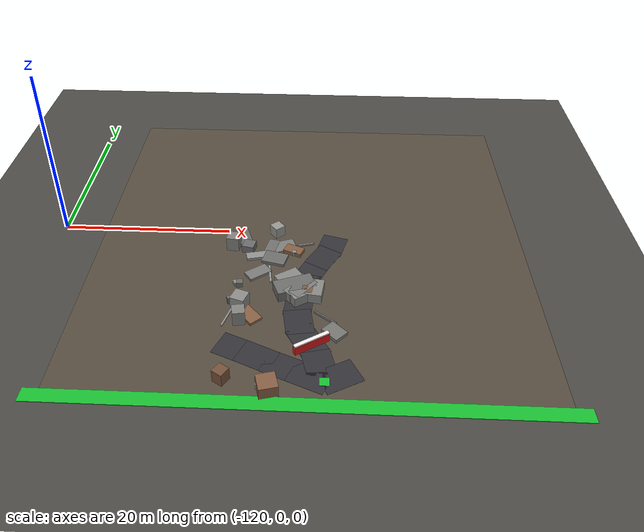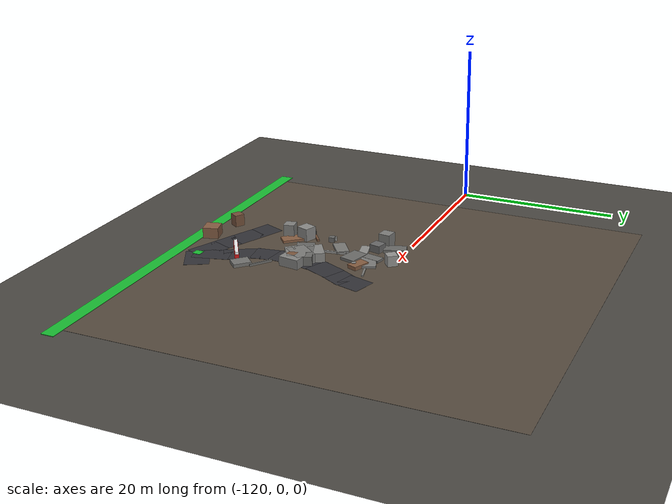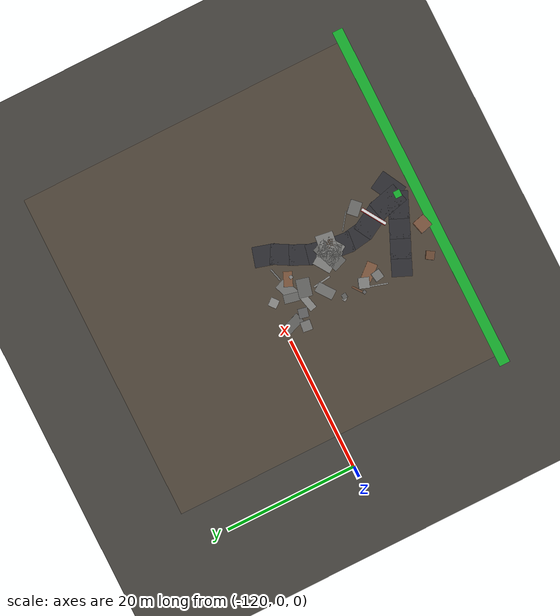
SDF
<sdf version="1.6">
 <world name="navitas_arena">
  <model name="ground_plane">
   <static>true</static>
   <link name="link">
    <collision name="collision">
     <geometry><plane><normal>0 0 1</normal><size>400 400</size></plane></geometry>
     <surface><friction><ode><mu>0.800</mu><mu2>0.800</mu2></ode></friction></surface>
    </collision>
    <visual name="visual">
     <cast_shadows>false</cast_shadows>
     <geometry><plane><normal>0 0 1</normal><size>400 400</size></plane></geometry>
     <material><ambient>0.300 0.290 0.270 1</ambient><diffuse>0.300 0.290 0.270 1</diffuse></material>
    </visual>
   </link>
  </model>
  <model name="gd_kolay">
   <static>true</static>
   <pose>-90.000 0.000 0.010 0 0 0.000</pose>
   <link name="link">
    <collision name="col"><geometry><box><size>50.000 50.000 0.020</size></box></geometry></collision>
    <visual name="vis">
     <geometry><box><size>50.000 50.000 0.020</size></box></geometry>
     <material><ambient>0.34 0.30 0.25 1</ambient><diffuse>0.34 0.30 0.25 1</diffuse></material>
    </visual>
   </link>
  </model>
  <model name="brd_kolay_S">
   <static>true</static>
   <pose>-90.000 -25.800 0.040 0 0 0.000</pose>
   <link name="link">
    <collision name="col"><geometry><box><size>53.200 1.600 0.080</size></box></geometry></collision>
    <visual name="vis">
     <geometry><box><size>53.200 1.600 0.080</size></box></geometry>
     <material><ambient>0.10 0.75 0.20 1</ambient><diffuse>0.10 0.75 0.20 1</diffuse></material>
    </visual>
   </link>
  </model>
  <model name="road_kolay_1_0">
   <static>true</static>
   <pose>-89.499 -22.399 0.040 0 0 2.741</pose>
   <link name="link">
    <collision name="col"><geometry><box><size>3.985 3.000 0.020</size></box></geometry></collision>
    <visual name="vis">
     <geometry><box><size>3.985 3.000 0.020</size></box></geometry>
     <material><ambient>0.20 0.20 0.22 1</ambient><diffuse>0.20 0.20 0.22 1</diffuse></material>
    </visual>
   </link>
  </model>
  <model name="road_kolay_1_1">
   <static>true</static>
   <pose>-92.226 -21.236 0.040 0 0 2.736</pose>
   <link name="link">
    <collision name="col"><geometry><box><size>3.744 3.000 0.020</size></box></geometry></collision>
    <visual name="vis">
     <geometry><box><size>3.744 3.000 0.020</size></box></geometry>
     <material><ambient>0.20 0.20 0.22 1</ambient><diffuse>0.20 0.20 0.22 1</diffuse></material>
    </visual>
   </link>
  </model>
  <model name="road_kolay_1_2">
   <static>true</static>
   <pose>-94.838 -20.087 0.040 0 0 2.719</pose>
   <link name="link">
    <collision name="col"><geometry><box><size>3.762 3.000 0.020</size></box></geometry></collision>
    <visual name="vis">
     <geometry><box><size>3.762 3.000 0.020</size></box></geometry>
     <material><ambient>0.20 0.20 0.22 1</ambient><diffuse>0.20 0.20 0.22 1</diffuse></material>
    </visual>
   </link>
  </model>
  <model name="road_kolay_1_3">
   <static>true</static>
   <pose>-97.314 -19.002 0.040 0 0 2.739</pose>
   <link name="link">
    <collision name="col"><geometry><box><size>3.445 3.000 0.020</size></box></geometry></collision>
    <visual name="vis">
     <geometry><box><size>3.445 3.000 0.020</size></box></geometry>
     <material><ambient>0.20 0.20 0.22 1</ambient><diffuse>0.20 0.20 0.22 1</diffuse></material>
    </visual>
   </link>
  </model>
  <model name="road_kolay_2_0">
   <static>true</static>
   <pose>-88.511 -21.250 0.040 0 0 1.813</pose>
   <link name="link">
    <collision name="col"><geometry><box><size>4.505 3.000 0.020</size></box></geometry></collision>
    <visual name="vis">
     <geometry><box><size>4.505 3.000 0.020</size></box></geometry>
     <material><ambient>0.20 0.20 0.22 1</ambient><diffuse>0.20 0.20 0.22 1</diffuse></material>
    </visual>
   </link>
  </model>
  <model name="road_kolay_2_1">
   <static>true</static>
   <pose>-89.820 -17.912 0.040 0 0 2.075</pose>
   <link name="link">
    <collision name="col"><geometry><box><size>4.528 3.000 0.020</size></box></geometry></collision>
    <visual name="vis">
     <geometry><box><size>4.528 3.000 0.020</size></box></geometry>
     <material><ambient>0.20 0.20 0.22 1</ambient><diffuse>0.20 0.20 0.22 1</diffuse></material>
    </visual>
   </link>
  </model>
  <model name="road_kolay_2_2">
   <static>true</static>
   <pose>-90.896 -15.042 0.040 0 0 1.725</pose>
   <link name="link">
    <collision name="col"><geometry><box><size>3.495 3.000 0.020</size></box></geometry></collision>
    <visual name="vis">
     <geometry><box><size>3.495 3.000 0.020</size></box></geometry>
     <material><ambient>0.20 0.20 0.22 1</ambient><diffuse>0.20 0.20 0.22 1</diffuse></material>
    </visual>
   </link>
  </model>
  <model name="road_kolay_2_3">
   <static>true</static>
   <pose>-90.962 -12.340 0.040 0 0 1.477</pose>
   <link name="link">
    <collision name="col"><geometry><box><size>3.753 3.000 0.020</size></box></geometry></collision>
    <visual name="vis">
     <geometry><box><size>3.753 3.000 0.020</size></box></geometry>
     <material><ambient>0.20 0.20 0.22 1</ambient><diffuse>0.20 0.20 0.22 1</diffuse></material>
    </visual>
   </link>
  </model>
  <model name="road_kolay_2_4">
   <static>true</static>
   <pose>-90.505 -9.460 0.040 0 0 1.353</pose>
   <link name="link">
    <collision name="col"><geometry><box><size>3.891 3.000 0.020</size></box></geometry></collision>
    <visual name="vis">
     <geometry><box><size>3.891 3.000 0.020</size></box></geometry>
     <material><ambient>0.20 0.20 0.22 1</ambient><diffuse>0.20 0.20 0.22 1</diffuse></material>
    </visual>
   </link>
  </model>
  <model name="road_kolay_2_5">
   <static>true</static>
   <pose>-89.645 -6.833 0.040 0 0 1.139</pose>
   <link name="link">
    <collision name="col"><geometry><box><size>3.469 3.000 0.020</size></box></geometry></collision>
    <visual name="vis">
     <geometry><box><size>3.469 3.000 0.020</size></box></geometry>
     <material><ambient>0.20 0.20 0.22 1</ambient><diffuse>0.20 0.20 0.22 1</diffuse></material>
    </visual>
   </link>
  </model>
  <model name="road_kolay_2_6">
   <static>true</static>
   <pose>-88.447 -4.500 0.040 0 0 1.056</pose>
   <link name="link">
    <collision name="col"><geometry><box><size>3.581 3.000 0.020</size></box></geometry></collision>
    <visual name="vis">
     <geometry><box><size>3.581 3.000 0.020</size></box></geometry>
     <material><ambient>0.20 0.20 0.22 1</ambient><diffuse>0.20 0.20 0.22 1</diffuse></material>
    </visual>
   </link>
  </model>
  <model name="road_kolay_2_7">
   <static>true</static>
   <pose>-87.449 -2.167 0.040 0 0 1.288</pose>
   <link name="link">
    <collision name="col"><geometry><box><size>3.330 3.000 0.020</size></box></geometry></collision>
    <visual name="vis">
     <geometry><box><size>3.330 3.000 0.020</size></box></geometry>
     <material><ambient>0.20 0.20 0.22 1</ambient><diffuse>0.20 0.20 0.22 1</diffuse></material>
    </visual>
   </link>
  </model>
  <model name="road_kolay_3_0">
   <static>true</static>
   <pose>-86.699 -22.266 0.040 0 0 0.489</pose>
   <link name="link">
    <collision name="col"><geometry><box><size>4.026 3.000 0.020</size></box></geometry></collision>
    <visual name="vis">
     <geometry><box><size>4.026 3.000 0.020</size></box></geometry>
     <material><ambient>0.20 0.20 0.22 1</ambient><diffuse>0.20 0.20 0.22 1</diffuse></material>
    </visual>
   </link>
  </model>
  <model name="bar_kolay_2">
   <static>true</static>
   <pose>-89.450 -18.504 0.500 0 0 3.702</pose>
   <link name="link">
    <collision name="col"><geometry><box><size>4.000 0.500 1.000</size></box></geometry></collision>
    <visual name="vis">
     <geometry><box><size>4.000 0.500 1.000</size></box></geometry>
     <material><ambient>0.85 0.10 0.10 1</ambient><diffuse>0.85 0.10 0.10 1</diffuse></material>
    </visual>
   </link>
  </model>
  <model name="bar_kolay_2b">
   <static>true</static>
   <pose>-89.450 -18.504 1.000 0 0 3.702</pose>
   <link name="link">
    <collision name="col"><geometry><box><size>4.000 0.400 0.300</size></box></geometry></collision>
    <visual name="vis">
     <geometry><box><size>4.000 0.400 0.300</size></box></geometry>
     <material><ambient>0.95 0.95 0.95 1</ambient><diffuse>0.95 0.95 0.95 1</diffuse></material>
    </visual>
   </link>
  </model>
  <model name="blk_kolay_2_0_0">
   <static>true</static>
   <pose>-89.874 -10.815 0.600 0 0 1.437</pose>
   <link name="link">
    <collision name="col"><geometry><box><size>2.585 2.942 1.200</size></box></geometry></collision>
    <visual name="vis">
     <geometry><box><size>2.585 2.942 1.200</size></box></geometry>
     <material><ambient>0.53 0.53 0.52 1</ambient><diffuse>0.53 0.53 0.52 1</diffuse></material>
    </visual>
   </link>
  </model>
  <model name="blk_kolay_2_0_1">
   <static>true</static>
   <pose>-90.118 -11.268 0.600 0 0 1.460</pose>
   <link name="link">
    <collision name="col"><geometry><box><size>1.112 1.112 1.200</size></box></geometry></collision>
    <visual name="vis">
     <geometry><box><size>1.112 1.112 1.200</size></box></geometry>
     <material><ambient>0.50 0.35 0.25 1</ambient><diffuse>0.50 0.35 0.25 1</diffuse></material>
    </visual>
   </link>
  </model>
  <model name="blk_kolay_2_0_2">
   <static>true</static>
   <pose>-91.536 -10.404 0.600 0 0 0.365</pose>
   <link name="link">
    <collision name="col"><geometry><box><size>4.382 2.172 1.200</size></box></geometry></collision>
    <visual name="vis">
     <geometry><box><size>4.382 2.172 1.200</size></box></geometry>
     <material><ambient>0.43 0.43 0.42 1</ambient><diffuse>0.43 0.43 0.42 1</diffuse></material>
    </visual>
   </link>
  </model>
  <model name="blk_kolay_2_0_3">
   <static>true</static>
   <pose>-90.945 -10.634 0.600 0 0 0.891</pose>
   <link name="link">
    <collision name="col"><geometry><box><size>3.248 2.330 1.200</size></box></geometry></collision>
    <visual name="vis">
     <geometry><box><size>3.248 2.330 1.200</size></box></geometry>
     <material><ambient>0.49 0.49 0.48 1</ambient><diffuse>0.49 0.49 0.48 1</diffuse></material>
    </visual>
   </link>
  </model>
  <model name="blk_kolay_2_0_4">
   <static>true</static>
   <pose>-91.459 -10.346 0.600 0 0 2.153</pose>
   <link name="link">
    <collision name="col"><geometry><box><size>4.481 2.786 1.200</size></box></geometry></collision>
    <visual name="vis">
     <geometry><box><size>4.481 2.786 1.200</size></box></geometry>
     <material><ambient>0.54 0.54 0.53 1</ambient><diffuse>0.54 0.54 0.53 1</diffuse></material>
    </visual>
   </link>
  </model>
  <model name="blk_kolay_2_0_5">
   <static>true</static>
   <pose>-91.927 -11.555 0.600 0 0 0.775</pose>
   <link name="link">
    <collision name="col"><geometry><box><size>1.119 1.119 1.200</size></box></geometry></collision>
    <visual name="vis">
     <geometry><box><size>1.119 1.119 1.200</size></box></geometry>
     <material><ambient>0.50 0.50 0.49 1</ambient><diffuse>0.50 0.50 0.49 1</diffuse></material>
    </visual>
   </link>
  </model>
  <model name="deb_kolay_1">
   <static>true</static>
   <pose>-93.348 -2.895 0.153 0 0 0.361</pose>
   <link name="link">
    <collision name="col"><geometry><box><size>3.176 1.853 0.307</size></box></geometry></collision>
    <visual name="vis">
     <geometry><box><size>3.176 1.853 0.307</size></box></geometry>
     <material><ambient>0.49 0.49 0.48 1</ambient><diffuse>0.49 0.49 0.48 1</diffuse></material>
    </visual>
   </link>
  </model>
  <model name="deb_kolay_3">
   <static>true</static>
   <pose>-91.915 -3.603 0.237 0 0 2.745</pose>
   <link name="link">
    <collision name="col"><geometry><box><size>2.190 1.310 0.474</size></box></geometry></collision>
    <visual name="vis">
     <geometry><box><size>2.190 1.310 0.474</size></box></geometry>
     <material><ambient>0.53 0.37 0.26 1</ambient><diffuse>0.53 0.37 0.26 1</diffuse></material>
    </visual>
   </link>
  </model>
  <model name="deb_kolay_16">
   <static>true</static>
   <pose>-95.796 -7.622 0.164 0 0 0.628</pose>
   <link name="link">
    <collision name="col"><geometry><box><size>2.740 1.505 0.328</size></box></geometry></collision>
    <visual name="vis">
     <geometry><box><size>2.740 1.505 0.328</size></box></geometry>
     <material><ambient>0.48 0.48 0.47 1</ambient><diffuse>0.48 0.48 0.47 1</diffuse></material>
    </visual>
   </link>
  </model>
  <model name="deb_kolay_19">
   <static>true</static>
   <pose>-94.417 -7.764 0.141 0 0 1.694</pose>
   <link name="link">
    <collision name="col"><geometry><box><size>2.726 0.218 0.281</size></box></geometry></collision>
    <visual name="vis">
     <geometry><box><size>2.726 0.218 0.281</size></box></geometry>
     <material><ambient>0.60 0.60 0.59 1</ambient><diffuse>0.60 0.60 0.59 1</diffuse></material>
    </visual>
   </link>
  </model>
  <model name="deb_kolay_21">
   <static>true</static>
   <pose>-96.152 -14.401 0.162 0 0 2.290</pose>
   <link name="link">
    <collision name="col"><geometry><box><size>2.666 1.549 0.325</size></box></geometry></collision>
    <visual name="vis">
     <geometry><box><size>2.666 1.549 0.325</size></box></geometry>
     <material><ambient>0.54 0.38 0.27 1</ambient><diffuse>0.54 0.38 0.27 1</diffuse></material>
    </visual>
   </link>
  </model>
  <model name="deb_kolay_39">
   <static>true</static>
   <pose>-97.242 -12.993 0.822 0 0 1.226</pose>
   <link name="link">
    <collision name="col"><geometry><box><size>1.578 1.578 1.644</size></box></geometry></collision>
    <visual name="vis">
     <geometry><box><size>1.578 1.578 1.644</size></box></geometry>
     <material><ambient>0.55 0.55 0.54 1</ambient><diffuse>0.55 0.55 0.54 1</diffuse></material>
    </visual>
   </link>
  </model>
  <model name="deb_kolay_40">
   <static>true</static>
   <pose>-91.855 -4.117 0.261 0 0 1.804</pose>
   <link name="link">
    <collision name="col"><geometry><box><size>0.489 0.489 0.522</size></box></geometry></collision>
    <visual name="vis">
     <geometry><box><size>0.489 0.489 0.522</size></box></geometry>
     <material><ambient>0.56 0.56 0.55 1</ambient><diffuse>0.56 0.56 0.55 1</diffuse></material>
    </visual>
   </link>
  </model>
  <model name="deb_kolay_62">
   <static>true</static>
   <pose>-96.145 -4.678 0.176 0 0 0.230</pose>
   <link name="link">
    <collision name="col"><geometry><box><size>2.480 1.085 0.352</size></box></geometry></collision>
    <visual name="vis">
     <geometry><box><size>2.480 1.085 0.352</size></box></geometry>
     <material><ambient>0.57 0.57 0.56 1</ambient><diffuse>0.57 0.57 0.56 1</diffuse></material>
    </visual>
   </link>
  </model>
  <model name="deb_kolay_81">
   <static>true</static>
   <pose>-94.047 -0.274 0.672 0 0 0.678</pose>
   <link name="link">
    <collision name="col"><geometry><box><size>1.281 1.281 1.343</size></box></geometry></collision>
    <visual name="vis">
     <geometry><box><size>1.281 1.281 1.343</size></box></geometry>
     <material><ambient>0.59 0.59 0.58 1</ambient><diffuse>0.59 0.59 0.58 1</diffuse></material>
    </visual>
   </link>
  </model>
  <model name="deb_kolay_83">
   <static>true</static>
   <pose>-98.466 -14.813 0.104 0 0 1.275</pose>
   <link name="link">
    <collision name="col"><geometry><box><size>2.676 0.185 0.209</size></box></geometry></collision>
    <visual name="vis">
     <geometry><box><size>2.676 0.185 0.209</size></box></geometry>
     <material><ambient>0.58 0.58 0.57 1</ambient><diffuse>0.58 0.58 0.57 1</diffuse></material>
    </visual>
   </link>
  </model>
  <model name="deb_kolay_92">
   <static>true</static>
   <pose>-87.139 -16.603 0.227 0 0 2.367</pose>
   <link name="link">
    <collision name="col"><geometry><box><size>2.153 1.686 0.454</size></box></geometry></collision>
    <visual name="vis">
     <geometry><box><size>2.153 1.686 0.454</size></box></geometry>
     <material><ambient>0.46 0.46 0.45 1</ambient><diffuse>0.46 0.46 0.45 1</diffuse></material>
    </visual>
   </link>
  </model>
  <model name="deb_kolay_115">
   <static>true</static>
   <pose>-97.190 -3.384 0.483 0 0 1.345</pose>
   <link name="link">
    <collision name="col"><geometry><box><size>1.396 1.396 0.965</size></box></geometry></collision>
    <visual name="vis">
     <geometry><box><size>1.396 1.396 0.965</size></box></geometry>
     <material><ambient>0.42 0.42 0.42 1</ambient><diffuse>0.42 0.42 0.42 1</diffuse></material>
    </visual>
   </link>
  </model>
  <model name="deb_kolay_126">
   <static>true</static>
   <pose>-98.070 -9.538 0.237 0 0 0.576</pose>
   <link name="link">
    <collision name="col"><geometry><box><size>0.552 0.552 0.474</size></box></geometry></collision>
    <visual name="vis">
     <geometry><box><size>0.552 0.552 0.474</size></box></geometry>
     <material><ambient>0.57 0.57 0.56 1</ambient><diffuse>0.57 0.57 0.56 1</diffuse></material>
    </visual>
   </link>
  </model>
  <model name="deb_kolay_132">
   <static>true</static>
   <pose>-97.670 -9.696 0.323 0 0 0.093</pose>
   <link name="link">
    <collision name="col"><geometry><box><size>0.718 0.718 0.646</size></box></geometry></collision>
    <visual name="vis">
     <geometry><box><size>0.718 0.718 0.646</size></box></geometry>
     <material><ambient>0.41 0.41 0.40 1</ambient><diffuse>0.41 0.41 0.40 1</diffuse></material>
    </visual>
   </link>
  </model>
  <model name="deb_kolay_133">
   <static>true</static>
   <pose>-97.719 -11.829 0.131 0 0 0.652</pose>
   <link name="link">
    <collision name="col"><geometry><box><size>1.888 0.275 0.263</size></box></geometry></collision>
    <visual name="vis">
     <geometry><box><size>1.888 0.275 0.263</size></box></geometry>
     <material><ambient>0.46 0.32 0.23 1</ambient><diffuse>0.46 0.32 0.23 1</diffuse></material>
    </visual>
   </link>
  </model>
  <model name="deb_kolay_134">
   <static>true</static>
   <pose>-97.957 -1.409 0.208 0 0 1.906</pose>
   <link name="link">
    <collision name="col"><geometry><box><size>2.802 1.486 0.416</size></box></geometry></collision>
    <visual name="vis">
     <geometry><box><size>2.802 1.486 0.416</size></box></geometry>
     <material><ambient>0.42 0.42 0.41 1</ambient><diffuse>0.42 0.42 0.41 1</diffuse></material>
    </visual>
   </link>
  </model>
  <model name="deb_kolay_158">
   <static>true</static>
   <pose>-97.953 -23.170 0.752 0 0 1.000</pose>
   <link name="link">
    <collision name="col"><geometry><box><size>1.233 1.233 1.504</size></box></geometry></collision>
    <visual name="vis">
     <geometry><box><size>1.233 1.233 1.504</size></box></geometry>
     <material><ambient>0.46 0.32 0.23 1</ambient><diffuse>0.46 0.32 0.23 1</diffuse></material>
    </visual>
   </link>
  </model>
  <model name="deb_kolay_159">
   <static>true</static>
   <pose>-99.021 -2.962 0.871 0 0 3.024</pose>
   <link name="link">
    <collision name="col"><geometry><box><size>1.461 1.461 1.742</size></box></geometry></collision>
    <visual name="vis">
     <geometry><box><size>1.461 1.461 1.742</size></box></geometry>
     <material><ambient>0.50 0.50 0.49 1</ambient><diffuse>0.50 0.50 0.49 1</diffuse></material>
    </visual>
   </link>
  </model>
  <model name="deb_kolay_173">
   <static>true</static>
   <pose>-94.037 -5.096 0.178 0 0 2.889</pose>
   <link name="link">
    <collision name="col"><geometry><box><size>2.692 1.973 0.356</size></box></geometry></collision>
    <visual name="vis">
     <geometry><box><size>2.692 1.973 0.356</size></box></geometry>
     <material><ambient>0.43 0.43 0.42 1</ambient><diffuse>0.43 0.43 0.42 1</diffuse></material>
    </visual>
   </link>
  </model>
  <model name="deb_kolay_188">
   <static>true</static>
   <pose>-88.148 -14.467 0.152 0 0 2.511</pose>
   <link name="link">
    <collision name="col"><geometry><box><size>2.910 0.173 0.304</size></box></geometry></collision>
    <visual name="vis">
     <geometry><box><size>2.910 0.173 0.304</size></box></geometry>
     <material><ambient>0.44 0.44 0.43 1</ambient><diffuse>0.44 0.44 0.43 1</diffuse></material>
    </visual>
   </link>
  </model>
  <model name="deb_kolay_196">
   <static>true</static>
   <pose>-98.455 -12.507 0.414 0 0 0.447</pose>
   <link name="link">
    <collision name="col"><geometry><box><size>0.459 0.459 0.828</size></box></geometry></collision>
    <visual name="vis">
     <geometry><box><size>0.459 0.459 0.828</size></box></geometry>
     <material><ambient>0.42 0.42 0.42 1</ambient><diffuse>0.42 0.42 0.42 1</diffuse></material>
    </visual>
   </link>
  </model>
  <model name="deb_kolay_198">
   <static>true</static>
   <pose>-94.375 -23.982 0.320 0 0 1.568</pose>
   <link name="link">
    <collision name="col"><geometry><box><size>0.445 0.445 0.641</size></box></geometry></collision>
    <visual name="vis">
     <geometry><box><size>0.445 0.445 0.641</size></box></geometry>
     <material><ambient>0.54 0.54 0.53 1</ambient><diffuse>0.54 0.54 0.53 1</diffuse></material>
    </visual>
   </link>
  </model>
  <model name="deb_kolay_203">
   <static>true</static>
   <pose>-94.523 -2.858 0.158 0 0 1.355</pose>
   <link name="link">
    <collision name="col"><geometry><box><size>2.262 1.270 0.317</size></box></geometry></collision>
    <visual name="vis">
     <geometry><box><size>2.262 1.270 0.317</size></box></geometry>
     <material><ambient>0.44 0.44 0.43 1</ambient><diffuse>0.44 0.44 0.43 1</diffuse></material>
    </visual>
   </link>
  </model>
  <model name="deb_kolay_205">
   <static>true</static>
   <pose>-90.585 -2.292 0.099 0 0 0.263</pose>
   <link name="link">
    <collision name="col"><geometry><box><size>1.983 0.245 0.198</size></box></geometry></collision>
    <visual name="vis">
     <geometry><box><size>1.983 0.245 0.198</size></box></geometry>
     <material><ambient>0.48 0.48 0.47 1</ambient><diffuse>0.48 0.48 0.47 1</diffuse></material>
    </visual>
   </link>
  </model>
  <model name="chic_kolay_0">
   <static>true</static>
   <pose>-93.474 -24.208 0.687 0 0 0.257</pose>
   <link name="link">
    <collision name="col"><geometry><box><size>1.933 1.933 1.374</size></box></geometry></collision>
    <visual name="vis">
     <geometry><box><size>1.933 1.933 1.374</size></box></geometry>
     <material><ambient>0.53 0.37 0.27 1</ambient><diffuse>0.53 0.37 0.27 1</diffuse></material>
    </visual>
   </link>
  </model>
  <model name="chic_kolay_1">
   <static>true</static>
   <pose>-97.150 -15.198 0.868 0 0 1.735</pose>
   <link name="link">
    <collision name="col"><geometry><box><size>1.347 1.347 1.735</size></box></geometry></collision>
    <visual name="vis">
     <geometry><box><size>1.347 1.347 1.735</size></box></geometry>
     <material><ambient>0.51 0.51 0.50 1</ambient><diffuse>0.51 0.51 0.50 1</diffuse></material>
    </visual>
   </link>
  </model>
  <model name="kb_kolay">
   <static>true</static>
   <pose>-88.078 -23.000 0.070 0 0 0.000</pose>
   <link name="link">
    <collision name="col"><geometry><box><size>1.000 1.000 0.040</size></box></geometry></collision>
    <visual name="vis">
     <geometry><box><size>1.000 1.000 0.040</size></box></geometry>
     <material><ambient>0.10 0.75 0.20 1</ambient><diffuse>0.10 0.75 0.20 1</diffuse></material>
    </visual>
   </link>
  </model>
 </world>
</sdf>
